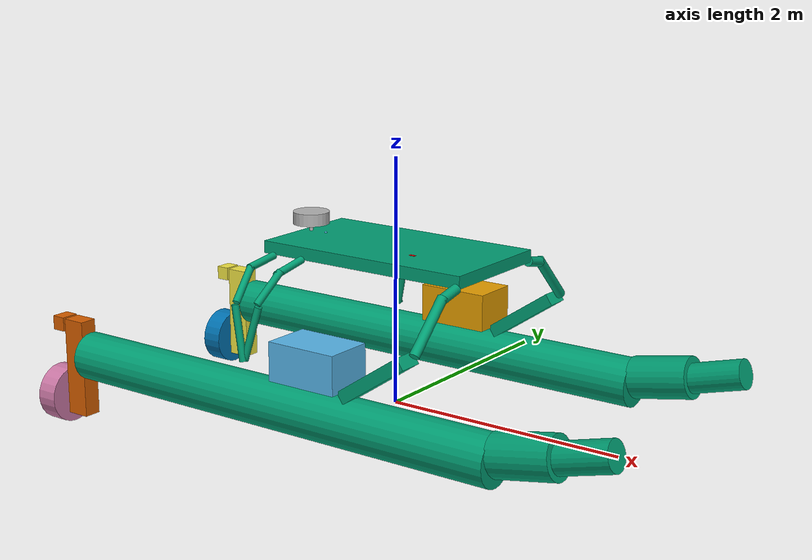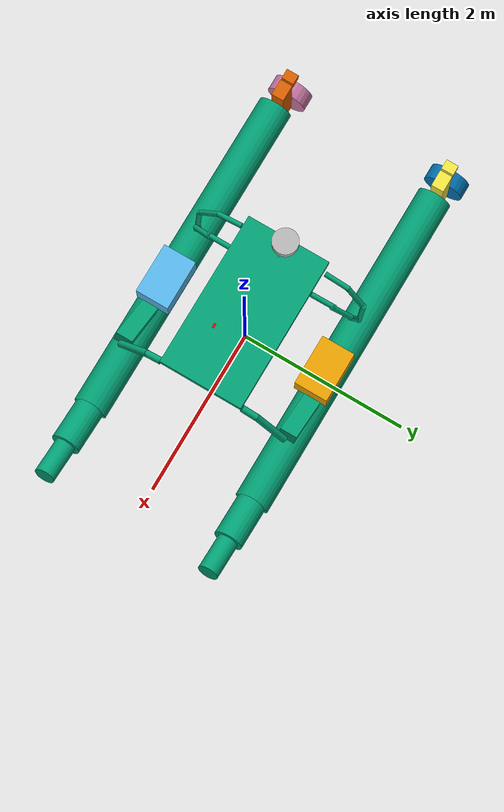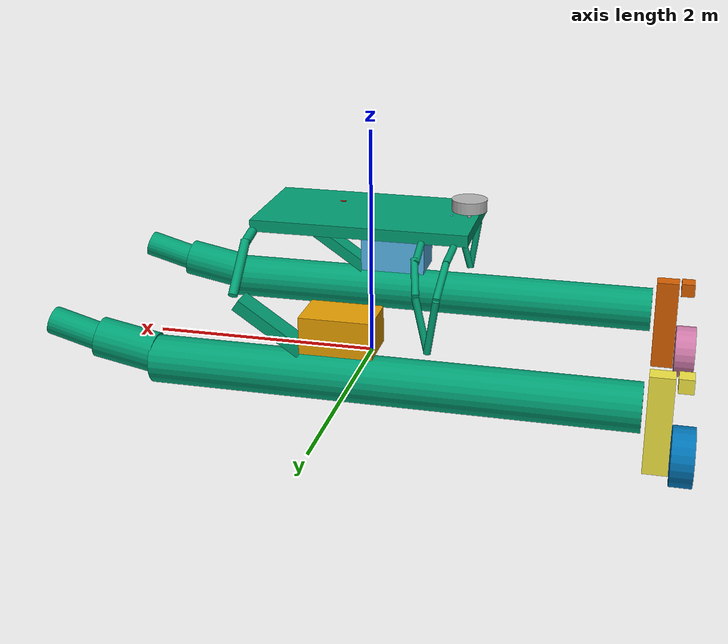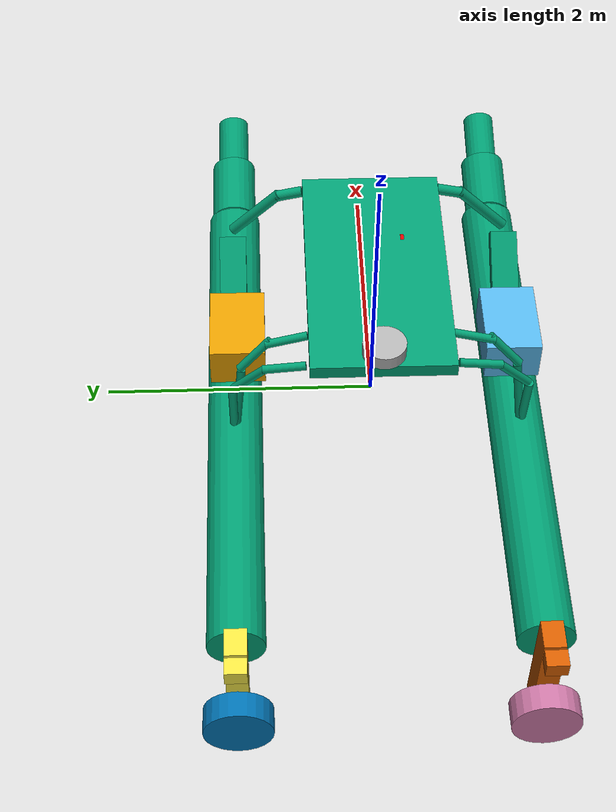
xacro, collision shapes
<?xml version="1.0" ?>
<!-- |    This document was autogenerated by xacro from /home/tomas/vrx_ws/install/share/wamv_gazebo/urdf/wamv_gazebo.urdf.xacro | -->
<!-- |    EDITING THIS FILE BY HAND IS NOT RECOMMENDED                                 | -->
<!-- Basic WAM-V with gazebo plugins for dynamics -->
<robot name="WAM-V" xmlns:xacro="http://ros.org/wiki/xacro">
  <link name="wamv/left_battery_link">
    <visual>
      <origin rpy="0 0 0" xyz="0 -1.03 -.45"/>
      <geometry>
        <mesh filename="package://vrx_gazebo/models/battery/mesh/battery.dae"/>
      </geometry>
    </visual>
    <collision name="left_battery_collision">
      <origin rpy="0 0 0" xyz="0 0 .15"/>
      <geometry>
        <box size=".6 .4 .31"/>
      </geometry>
    </collision>
    <inertial>
      <origin rpy=" 0 0 0" xyz="0 0 .15"/>
      <mass value="23.5"/>
      <inertia ixx="0.5015291666666667" ixy="0" ixz="0" iyy="0.8931958333333333" iyz="0" izz="1.0183333333333333"/>
    </inertial>
  </link>
  <joint name="wamv/left_chasis_battery_joint" type="fixed">
    <origin rpy="0 0 0" xyz="0 1 0.45"/>
    <parent link="wamv/base_link"/>
    <child link="wamv/left_battery_link"/>
  </joint>
  <gazebo reference="wamv/left_battery_link">
    <visual>
      <material>
        <diffuse>1.0 1.0 1.0</diffuse>
        <specular>1.0 1.0 1.0</specular>
        <pbr>
          <metal>
            <albedo_map>model://vrx_gazebo/models/battery/mesh/battery_Albedo.png</albedo_map>
            <normal_map>model://vrx_gazebo/models/battery/mesh/battery_Normal.png</normal_map>
            <roughness_map>model://vrx_gazebo/models/battery/mesh/battery_Roughness.png</roughness_map>
            <metalness_map>model://vrx_gazebo/models/battery/mesh/battery_Metalness.png</metalness_map>
          </metal>
        </pbr>
      </material>
    </visual>
  </gazebo>
  <link name="wamv/right_battery_link">
    <visual>
      <origin rpy="0 0 0" xyz="0 -1.03 -.45"/>
      <geometry>
        <mesh filename="package://vrx_gazebo/models/battery/mesh/battery.dae"/>
      </geometry>
    </visual>
    <collision name="right_battery_collision">
      <origin rpy="0 0 0" xyz="0 0 .15"/>
      <geometry>
        <box size=".6 .4 .31"/>
      </geometry>
    </collision>
    <inertial>
      <origin rpy=" 0 0 0" xyz="0 0 .15"/>
      <mass value="23.5"/>
      <inertia ixx="0.5015291666666667" ixy="0" ixz="0" iyy="0.8931958333333333" iyz="0" izz="1.0183333333333333"/>
    </inertial>
  </link>
  <joint name="wamv/right_chasis_battery_joint" type="fixed">
    <origin rpy="0 0 0" xyz="0 -1 0.45"/>
    <parent link="wamv/base_link"/>
    <child link="wamv/right_battery_link"/>
  </joint>
  <gazebo reference="wamv/right_battery_link">
    <visual>
      <material>
        <diffuse>1.0 1.0 1.0</diffuse>
        <specular>1.0 1.0 1.0</specular>
        <pbr>
          <metal>
            <albedo_map>model://vrx_gazebo/models/battery/mesh/battery_Albedo.png</albedo_map>
            <normal_map>model://vrx_gazebo/models/battery/mesh/battery_Normal.png</normal_map>
            <roughness_map>model://vrx_gazebo/models/battery/mesh/battery_Roughness.png</roughness_map>
            <metalness_map>model://vrx_gazebo/models/battery/mesh/battery_Metalness.png</metalness_map>
          </metal>
        </pbr>
      </material>
    </visual>
  </gazebo>
  <!-- Basic model of the 16' WAM-V USV -->
  <link name="wamv/base_link">
    <visual>
      <geometry>
        <mesh filename="package://wamv_description/models/WAM-V-Base/mesh/WAM-V-Base.dae"/>
      </geometry>
    </visual>
    <!-- Main float -->
    <collision name="left_float">
      <origin rpy="0 1.57 0" xyz="-0.4 1.03 0.2"/>
      <geometry>
        <cylinder length="4" radius="0.2"/>
      </geometry>
    </collision>
    <collision name="left_mid_float">
      <origin rpy="0 1.38 0" xyz="1.85 1.03 0.3"/>
      <geometry>
        <cylinder length="0.5" radius="0.17"/>
      </geometry>
    </collision>
    <collision name="left_front_float">
      <origin rpy="0 1.3 0" xyz="2.3 1.03 0.4"/>
      <geometry>
        <cylinder length="0.45" radius="0.12"/>
      </geometry>
    </collision>
    <!-- Front beam -->
    <collision name="front_left_beam_lower">
      <origin rpy="0.78 0 0" xyz="0.9 0.85 1"/>
      <geometry>
        <cylinder length="0.5" radius="0.04"/>
      </geometry>
    </collision>
    <collision name="front_left_beam_upper">
      <origin rpy="1.35 0 0" xyz="0.9 0.6 1.18"/>
      <geometry>
        <cylinder length="0.2" radius="0.04"/>
      </geometry>
    </collision>
    <!-- Mid beam -->
    <collision name="mid_left_beam_lower">
      <origin rpy="0.1 0.25 0" xyz="-0.65 0.99 0.7"/>
      <geometry>
        <cylinder length="0.45" radius="0.03"/>
      </geometry>
    </collision>
    <collision name="mid_left_beam_medium">
      <origin rpy="0.75 0.25 0" xyz="-0.57 0.87 1.05"/>
      <geometry>
        <cylinder length="0.32" radius="0.03"/>
      </geometry>
    </collision>
    <collision name="mid_left_beam_upper">
      <origin rpy="1.35 0.25 0" xyz="-0.55 0.65 1.17"/>
      <geometry>
        <cylinder length="0.3" radius="0.03"/>
      </geometry>
    </collision>
    <!-- Rear beam -->
    <collision name="rear_left_beam_lower">
      <origin rpy="0 -0.15 0" xyz="-0.74 1.03 0.7"/>
      <geometry>
        <cylinder length="0.45" radius="0.03"/>
      </geometry>
    </collision>
    <collision name="rear_left_beam_medium">
      <origin rpy="0.75 -0.15 0" xyz="-0.79 0.91 1.05"/>
      <geometry>
        <cylinder length="0.32" radius="0.03"/>
      </geometry>
    </collision>
    <collision name="rear_left_beam_upper">
      <origin rpy="1.45 -0.15 0" xyz="-0.81 0.67 1.18"/>
      <geometry>
        <cylinder length="0.3" radius="0.03"/>
      </geometry>
    </collision>
    <!-- Joint -->
    <collision name="left_joint">
      <origin rpy="0 -0.6 0" xyz="0.58 1.03 0.6"/>
      <geometry>
        <box size="0.65 0.2 0.1"/>
      </geometry>
    </collision>
    <!-- Main float -->
    <collision name="right_float">
      <origin rpy="0 1.57 0" xyz="-0.4 -1.03 0.2"/>
      <geometry>
        <cylinder length="4" radius="0.2"/>
      </geometry>
    </collision>
    <collision name="right_mid_float">
      <origin rpy="0 1.38 0" xyz="1.85 -1.03 0.3"/>
      <geometry>
        <cylinder length="0.5" radius="0.17"/>
      </geometry>
    </collision>
    <collision name="right_front_float">
      <origin rpy="0 1.3 0" xyz="2.3 -1.03 0.4"/>
      <geometry>
        <cylinder length="0.45" radius="0.12"/>
      </geometry>
    </collision>
    <!-- Front beam -->
    <collision name="front_right_beam_lower">
      <origin rpy="-0.78 0 0" xyz="0.9 -0.85 1"/>
      <geometry>
        <cylinder length="0.5" radius="0.04"/>
      </geometry>
    </collision>
    <collision name="front_right_beam_upper">
      <origin rpy="-1.35 0 0" xyz="0.9 -0.6 1.18"/>
      <geometry>
        <cylinder length="0.2" radius="0.04"/>
      </geometry>
    </collision>
    <!-- Mid beam -->
    <collision name="mid_right_beam_lower">
      <origin rpy="-0.1 0.25 0" xyz="-0.65 -0.99 0.7"/>
      <geometry>
        <cylinder length="0.45" radius="0.03"/>
      </geometry>
    </collision>
    <collision name="mid_right_beam_medium">
      <origin rpy="-0.75 0.25 0" xyz="-0.57 -0.87 1.05"/>
      <geometry>
        <cylinder length="0.32" radius="0.03"/>
      </geometry>
    </collision>
    <collision name="mid_right_beam_upper">
      <origin rpy="-1.35 0.25 0" xyz="-0.55 -0.65 1.17"/>
      <geometry>
        <cylinder length="0.3" radius="0.03"/>
      </geometry>
    </collision>
    <!-- Rear beam -->
    <collision name="rear_right_beam_lower">
      <origin rpy="0 -0.15 0" xyz="-0.74 -1.03 0.7"/>
      <geometry>
        <cylinder length="0.45" radius="0.03"/>
      </geometry>
    </collision>
    <collision name="rear_right_beam_medium">
      <origin rpy="-0.75 -0.15 0" xyz="-0.79 -0.91 1.05"/>
      <geometry>
        <cylinder length="0.32" radius="0.03"/>
      </geometry>
    </collision>
    <collision name="rear_right_beam_upper">
      <origin rpy="-1.45 -0.15 0" xyz="-0.81 -0.67 1.18"/>
      <geometry>
        <cylinder length="0.3" radius="0.03"/>
      </geometry>
    </collision>
    <!-- Joint -->
    <collision name="right_joint">
      <origin rpy="0 -0.6 0" xyz="0.58 -1.03 0.6"/>
      <geometry>
        <box size="0.65 0.2 0.1"/>
      </geometry>
    </collision>
    <!-- Top base -->
    <collision name="top_base">
      <origin rpy="0 0 0" xyz="0 -0 1.25"/>
      <geometry>
        <box size="1.85 1 0.1"/>
      </geometry>
    </collision>
    <inertial>
      <!-- From WAM-V spec sheet -->
      <mass value="180.0"/>
      <inertia ixx="120.0" ixy="0.0" ixz="0.0" iyy="393" iyz="0.0" izz="446.0"/>
    </inertial>
  </link>
  <gazebo>
    <enable_wind>true</enable_wind>
  </gazebo>
  <gazebo reference="wamv/base_link">
    <visual>
      <material>
        <diffuse>1.0 1.0 1.0</diffuse>
        <specular>1.0 1.0 1.0</specular>
        <pbr>
          <metal>
            <albedo_map>model://wamv_description/models/WAM-V-Base/mesh/WAM-V_Albedo.png</albedo_map>
            <normal_map>model://wamv_description/models/WAM-V-Base/mesh/WAM-V_Normal.png</normal_map>
            <roughness_map>model://wamv_description/models/WAM-V-Base/mesh/WAM-V_Roughness.png</roughness_map>
            <metalness_map>model://wamv_description/models/WAM-V-Base/mesh/WAM-V_Metalness.png</metalness_map>
          </metal>
        </pbr>
      </material>
    </visual>
    <sensor name="contact_sensor" type="contact">
      <contact>
        <!-- collisions are renamed during urdf -> sdf fixed joint lumping -->
        <collision>wamv/base_link_fixed_joint_lump__top_base_collision_24</collision>
        <collision>wamv/base_link_fixed_joint_lump__left_float_collision</collision>
        <collision>wamv/base_link_fixed_joint_lump__left_mid_float_collision_1</collision>
        <collision>wamv/base_link_fixed_joint_lump__left_front_float_collision_2</collision>
        <collision>wamv/base_link_fixed_joint_lump__right_float_collision_12</collision>
        <collision>wamv/base_link_fixed_joint_lump__right_mid_float_collision_13</collision>
        <collision>wamv/base_link_fixed_joint_lump__right_front_float_collision_14</collision>
        <topic>/vrx/contacts</topic>
      </contact>
      <always_on>1</always_on>
      <update_rate>5</update_rate>
    </sensor>
  </gazebo>
  <link name="wamv/left_engine_link">
    <visual>
      <geometry>
        <mesh filename="package://wamv_description/models/engine/mesh/engine.dae"/>
      </geometry>
    </visual>
    <collision name="left_engine_vertical_axis_collision">
      <origin rpy="0 0 0" xyz="-0.16 0 -0.24"/>
      <geometry>
        <box size="0.2 0.15 0.83"/>
      </geometry>
    </collision>
    <collision name="left_engine_rear_end_collision">
      <origin rpy="0 0 0" xyz="-0.34 0 0.12"/>
      <geometry>
        <box size="0.12 0.15 0.12"/>
      </geometry>
    </collision>
    <inertial>
      <mass value="15"/>
      <inertia ixx="0.889245" ixy="0.0" ixz="0.0" iyy="0.911125" iyz="0.0" izz="0.078125"/>
    </inertial>
  </link>
  <link name="wamv/left_propeller_link">
    <visual>
      <geometry>
        <mesh filename="package://wamv_description/models/propeller/mesh/propeller.dae"/>
      </geometry>
    </visual>
    <collision name="left_propeller_collision">
      <origin rpy="0 1.57 0" xyz="-0.08 0 0"/>
      <geometry>
        <cylinder length="0.18" radius="0.24"/>
      </geometry>
    </collision>
    <inertial>
      <mass value="0.5"/>
      <inertia ixx="0.008545" ixy="0.0" ixz="0.0" iyy="0.008545" iyz="0.0" izz="0.0144"/>
    </inertial>
  </link>
  <joint name="wamv/left_chassis_engine_joint" type="revolute">
    <axis xyz="0 0 1"/>
    <limit effort="1000" lower="-3.141592653589793" upper="3.141592653589793" velocity="10"/>
    <origin rpy="0.0 0.0 0.0" xyz="-2.373776 1.027135 0.318237"/>
    <parent link="wamv/base_link"/>
    <child link="wamv/left_engine_link"/>
    <dynamics damping="10.0" friction="10.0"/>
  </joint>
  <joint name="wamv/left_engine_propeller_joint" type="continuous">
    <axis rpy="0 0 0" xyz="1 0 0"/>
    <parent link="wamv/left_engine_link"/>
    <child link="wamv/left_propeller_link"/>
    <origin rpy="0 0 0" xyz="-0.278156 0 -0.509371"/>
    <limit effort="100" velocity="100"/>
    <dynamics damping="0.05" friction="0.05"/>
  </joint>
  <link name="wamv/right_engine_link">
    <visual>
      <geometry>
        <mesh filename="package://wamv_description/models/engine/mesh/engine.dae"/>
      </geometry>
    </visual>
    <collision name="right_engine_vertical_axis_collision">
      <origin rpy="0 0 0" xyz="-0.16 0 -0.24"/>
      <geometry>
        <box size="0.2 0.15 0.83"/>
      </geometry>
    </collision>
    <collision name="right_engine_rear_end_collision">
      <origin rpy="0 0 0" xyz="-0.34 0 0.12"/>
      <geometry>
        <box size="0.12 0.15 0.12"/>
      </geometry>
    </collision>
    <inertial>
      <mass value="15"/>
      <inertia ixx="0.889245" ixy="0.0" ixz="0.0" iyy="0.911125" iyz="0.0" izz="0.078125"/>
    </inertial>
  </link>
  <link name="wamv/right_propeller_link">
    <visual>
      <geometry>
        <mesh filename="package://wamv_description/models/propeller/mesh/propeller.dae"/>
      </geometry>
    </visual>
    <collision name="right_propeller_collision">
      <origin rpy="0 1.57 0" xyz="-0.08 0 0"/>
      <geometry>
        <cylinder length="0.18" radius="0.24"/>
      </geometry>
    </collision>
    <inertial>
      <mass value="0.5"/>
      <inertia ixx="0.008545" ixy="0.0" ixz="0.0" iyy="0.008545" iyz="0.0" izz="0.0144"/>
    </inertial>
  </link>
  <joint name="wamv/right_chassis_engine_joint" type="revolute">
    <axis xyz="0 0 1"/>
    <limit effort="1000" lower="-3.141592653589793" upper="3.141592653589793" velocity="10"/>
    <origin rpy="0.0 0.0 0.0" xyz="-2.373776 -1.027135 0.318237"/>
    <parent link="wamv/base_link"/>
    <child link="wamv/right_engine_link"/>
    <dynamics damping="10.0" friction="10.0"/>
  </joint>
  <joint name="wamv/right_engine_propeller_joint" type="continuous">
    <axis rpy="0 0 0" xyz="1 0 0"/>
    <parent link="wamv/right_engine_link"/>
    <child link="wamv/right_propeller_link"/>
    <origin rpy="0 0 0" xyz="-0.278156 0 -0.509371"/>
    <limit effort="100" velocity="100"/>
    <dynamics damping="0.05" friction="0.05"/>
  </joint>
  <gazebo>
    <plugin filename="gz-sim-thruster-system" name="gz::sim::systems::Thruster">
      <joint_name>wamv/left_engine_propeller_joint</joint_name>
      <thrust_coefficient>0.004422</thrust_coefficient>
      <fluid_density>1000</fluid_density>
      <propeller_diameter>0.2</propeller_diameter>
      <velocity_control>true</velocity_control>
      <!-- max total thrust / 2 -->
      <max_thrust_cmd>2353.53383667818</max_thrust_cmd>
      <namespace>wamv</namespace>
      <topic>thrusters/left/thrust</topic>
      <!-- Not used by Gazebo but used to run the bridge easily -->
      <name>left</name>
    </plugin>
    <plugin filename="gz-sim-joint-position-controller-system" name="gz::sim::systems::JointPositionController">
      <joint_name>wamv/left_chassis_engine_joint</joint_name>
      <use_velocity_commands>true</use_velocity_commands>
      <topic>wamv/thrusters/left/pos</topic>
      <!-- Not used by Gazebo but used to run the bridge easily -->
      <name>left</name>
    </plugin>
  </gazebo>
  <gazebo>
    <plugin filename="gz-sim-thruster-system" name="gz::sim::systems::Thruster">
      <joint_name>wamv/right_engine_propeller_joint</joint_name>
      <thrust_coefficient>0.004422</thrust_coefficient>
      <fluid_density>1000</fluid_density>
      <propeller_diameter>0.2</propeller_diameter>
      <velocity_control>true</velocity_control>
      <!-- max total thrust / 2 -->
      <max_thrust_cmd>2353.53383667818</max_thrust_cmd>
      <namespace>wamv</namespace>
      <topic>thrusters/right/thrust</topic>
      <!-- Not used by Gazebo but used to run the bridge easily -->
      <name>right</name>
    </plugin>
    <plugin filename="gz-sim-joint-position-controller-system" name="gz::sim::systems::JointPositionController">
      <joint_name>wamv/right_chassis_engine_joint</joint_name>
      <use_velocity_commands>true</use_velocity_commands>
      <topic>wamv/thrusters/right/pos</topic>
      <!-- Not used by Gazebo but used to run the bridge easily -->
      <name>right</name>
    </plugin>
  </gazebo>
  <!--Gazebo Plugin for simulating WAM-V dynamics-->
  <gazebo>
    <!-- Left hull -->
    <plugin filename="libSurface.so" name="vrx::Surface">
      <link_name>wamv/base_link</link_name>
      <hull_length>4.9</hull_length>
      <hull_radius>0.213</hull_radius>
      <fluid_level>0</fluid_level>
      <points>
        <point>0.6 1.03 0</point>
        <point>-1.4 1.03 0</point>
      </points>
      <wavefield>
        <topic>/vrx/wavefield/parameters</topic>
      </wavefield>
    </plugin>
    <!-- Right hull -->
    <plugin filename="libSurface.so" name="vrx::Surface">
      <link_name>wamv/base_link</link_name>
      <hull_length>4.9</hull_length>
      <hull_radius>0.213</hull_radius>
      <fluid_level>0</fluid_level>
      <points>
        <point>0.6 -1.03 0</point>
        <point>-1.4 -1.03 0</point>
      </points>
      <wavefield>
        <topic>/vrx/wavefield/parameters</topic>
      </wavefield>
    </plugin>
    <plugin filename="libSimpleHydrodynamics.so" name="vrx::SimpleHydrodynamics">
      <link_name>wamv/base_link</link_name>
      <!-- Added mass -->
      <xDotU>0.0</xDotU>
      <yDotV>0.0</yDotV>
      <nDotR>0.0</nDotR>
      <!-- Linear and quadratic drag -->
      <xU>100.0</xU>
      <xUU>150.0</xUU>
      <yV>100.0</yV>
      <yVV>100.0</yVV>
      <zW>500.0</zW>
      <kP>300.0</kP>
      <kPP>600.0</kPP>
      <mQ>900.0</mQ>
      <mQQ>900.0</mQQ>
      <nR>800.0</nR>
      <nRR>800.0</nRR>
    </plugin>
  </gazebo>
  <!-- === [Un]lock the robot to the world === -->
  <gazebo>
    <plugin filename="gz-sim-detachable-joint-system" name="gz::sim::systems::DetachableJoint">
      <parent_link>wamv/base_link</parent_link>
      <child_model>platform</child_model>
      <child_link>dummy_upper</child_link>
      <topic>/vrx/release</topic>
      <suppress_child_warning>true</suppress_child_warning>
    </plugin>
  </gazebo>
  <!-- === TF === -->
  <!-- Publish robot state information -->
  <gazebo>
    <plugin filename="libgz-sim-pose-publisher-system.so" name="gz::sim::systems::PosePublisher">
      <publish_link_pose>false</publish_link_pose>
      <publish_sensor_pose>true</publish_sensor_pose>
      <publish_collision_pose>false</publish_collision_pose>
      <publish_visual_pose>false</publish_visual_pose>
      <publish_nested_model_pose>false</publish_nested_model_pose>
      <publish_model_pose>false</publish_model_pose>
      <use_pose_vector_msg>true</use_pose_vector_msg>
      <static_publisher>false</static_publisher>
      <static_update_frequency>1</static_update_frequency>
    </plugin>
    <plugin filename="gz-sim-joint-state-publisher-system" name="gz::sim::systems::JointStatePublisher">
    </plugin>
    <plugin filename="gz-sim-odometry-publisher-system" name="gz::sim::systems::OdometryPublisher">
        <dimensions>3</dimensions>
        <odom_publish_frequency>10.0</odom_publish_frequency>
        <odom_frame>map</odom_frame>
        <robot_base_frame>wamv/base_link</robot_base_frame>
    </plugin>
  </gazebo>
  <link name="wamv/gps_wamv_link">
    <visual name="gps_wamv_visual">
      <geometry>
        <mesh filename="package://wamv_gazebo/models/gps/mesh/gps.dae"/>
      </geometry>
    </visual>
    <collision name="gps_wamv_collision_base">
      <origin rpy="0 0 0" xyz="0 0 0.025"/>
      <geometry>
        <cylinder length="0.05" radius="0.015"/>
      </geometry>
    </collision>
    <collision name="gps_wamv_collision_antenna">
      <origin rpy="0 0 0" xyz="0 0 0.11"/>
      <geometry>
        <cylinder length="0.1" radius="0.15"/>
      </geometry>
    </collision>
    <inertial>
      <mass value="1"/>
      <inertia ixx="0.006458" ixy="0.0" ixz="0.0" iyy="0.006458" iyz="0.0" izz="0.01125"/>
    </inertial>
  </link>
  <joint name="wamv/gps_wamv_joint" type="revolute">
    <axis xyz="0 0 1"/>
    <limit effort="1000.0" lower="0.0" upper="0" velocity="0"/>
    <origin rpy="0.0 0.0 0.0" xyz="-0.85 0.0 1.3"/>
    <parent link="wamv/base_link"/>
    <child link="wamv/gps_wamv_link"/>
  </joint>
  <gazebo reference="wamv/gps_wamv_link">
    <sensor name="navsat" type="navsat">
      <always_on>1</always_on>
      <update_rate>20</update_rate>
    </sensor>
  </gazebo>
  <link name="wamv/imu_wamv_link">
    <visual name="imu_wamv_visual">
      &gt;

      <geometry>
        <box size="0.05 0.025 0.005"/>
      </geometry>
      <material name="imu_wamv_visual_material">
        <color rgba="1.0 0.0 00 1.0"/>
      </material>
    </visual>
    <collision name="imu_wamv_collision">
      &gt;

      <geometry>
        <box size="0.05 0.025 0.005"/>
      </geometry>
    </collision>
    <inertial>
      <mass value="0.1"/>
      <inertia ixx="0.00000542" ixy="0.0" ixz="0.0" iyy="0.00002104" iyz="0.0" izz="0.00002604"/>
    </inertial>
  </link>
  <joint name="wamv/imu_wamv_joint" type="revolute">
    <axis xyz="0 0 1"/>
    <limit effort="1000.0" lower="0.0" upper="0" velocity="0"/>
    <origin rpy="0.0 0.0 0.0" xyz="0.3 -0.2 1.3"/>
    <parent link="wamv/base_link"/>
    <child link="wamv/imu_wamv_link"/>
  </joint>
  <gazebo reference="wamv/imu_wamv_link">
    <sensor name="imu_wamv_sensor" type="imu">
      <update_rate>100</update_rate>
      <imu>
        <angular_velocity>
          <x>
            <noise type="gaussian">
              <mean>0</mean>
              <stddev>0.009</stddev>
              <bias_mean>0.00075</bias_mean>
              <bias_stddev>0.005</bias_stddev>
              <dynamic_bias_stddev>0.00002</dynamic_bias_stddev>
              <dynamic_bias_correlation_time>400.0</dynamic_bias_correlation_time>
              <precision>0.00025</precision>
            </noise>
          </x>
          <y>
            <noise type="gaussian">
              <mean>0</mean>
              <stddev>0.009</stddev>
              <bias_mean>0.00075</bias_mean>
              <bias_stddev>0.005</bias_stddev>
              <dynamic_bias_stddev>0.00002</dynamic_bias_stddev>
              <dynamic_bias_correlation_time>400.0</dynamic_bias_correlation_time>
              <precision>0.00025</precision>
            </noise>
          </y>
          <z>
            <noise type="gaussian">
              <mean>0</mean>
              <stddev>0.009</stddev>
              <bias_mean>0.00075</bias_mean>
              <bias_stddev>0.005</bias_stddev>
              <dynamic_bias_stddev>0.00002</dynamic_bias_stddev>
              <dynamic_bias_correlation_time>400.0</dynamic_bias_correlation_time>
              <precision>0.00025</precision>
            </noise>
          </z>
        </angular_velocity>
        <linear_acceleration>
          <x>
            <noise type="gaussian">
              <mean>0</mean>
              <stddev>0.021</stddev>
              <bias_mean>0.05</bias_mean>
              <bias_stddev>0.0075</bias_stddev>
              <dynamic_bias_stddev>0.000375</dynamic_bias_stddev>
              <dynamic_bias_correlation_time>175.0</dynamic_bias_correlation_time>
              <precision>0.005</precision>
            </noise>
          </x>
          <y>
            <noise type="gaussian">
              <mean>0</mean>
              <stddev>0.021</stddev>
              <bias_mean>0.05</bias_mean>
              <bias_stddev>0.0075</bias_stddev>
              <dynamic_bias_stddev>0.000375</dynamic_bias_stddev>
              <dynamic_bias_correlation_time>175.0</dynamic_bias_correlation_time>
              <precision>0.005</precision>
            </noise>
          </y>
          <z>
            <noise type="gaussian">
              <mean>0</mean>
              <stddev>0.021</stddev>
              <bias_mean>0.05</bias_mean>
              <bias_stddev>0.0075</bias_stddev>
              <dynamic_bias_stddev>0.000375</dynamic_bias_stddev>
              <dynamic_bias_correlation_time>175.0</dynamic_bias_correlation_time>
              <precision>0.005</precision>
            </noise>
          </z>
        </linear_acceleration>
        <orientation_reference_frame>
          <localization>ENU</localization>
        </orientation_reference_frame>
      </imu>
    </sensor>
  </gazebo>
  <link name="wamv/tether_anchor">
    <!-- Visual removido para estética -->
    <collision name="wamv/tether_anchor_collision">
      <geometry><sphere radius="0.01"/></geometry>
    </collision>
    <inertial>
      <mass value="0.1"/>
      <inertia ixx="0.0001" ixy="0" ixz="0" iyy="0.0001" iyz="0" izz="0.0001"/>
    </inertial>
  </link>
  <joint name="wamv/tether_anchor_joint" type="fixed">
    <origin rpy="0 0 0" xyz="-0.70 0.0 1.3"/>
    <parent link="wamv/base_link"/>
    <child link="wamv/tether_anchor"/>
  </joint>

  <gazebo reference="wamv/tether_anchor_joint">
    <preserveFixedJoint>true</preserveFixedJoint>
  </gazebo>

  <!-- Ativar colisões internas para que o tether (e outras partes móveis) colidam com o barco -->
  <gazebo>
    <self_collide>true</self_collide>
  </gazebo>

  <!-- Inclusão Condicional do Tether como Modelo Aninhado -->
  <xacro:arg name="has_tether" default="false"/>
  <xacro:if value="$(arg has_tether)">
    <gazebo>
      <include>
        <uri>model://tether</uri>
        <!-- A pose do tether é relativa à âncora, logo 0 0 0 -->
        <pose>-0.70 0.0 1.3 0 0 0</pose>
      </include>
      <!-- Usar uma junta universal ou ball para o ponto de fixação para garantir flexibilidade -->
      <joint name="tether_to_boat_joint" type="universal">
        <parent>wamv/tether_anchor</parent>
        <child>tether::link_base</child>
        <axis><xyz>1 0 0</xyz><dynamics><damping>0.1</damping></dynamics></axis>
        <axis2><xyz>0 1 0</xyz><dynamics><damping>0.1</damping></dynamics></axis2>
      </joint>
    </gazebo>
  </xacro:if>

</robot>
